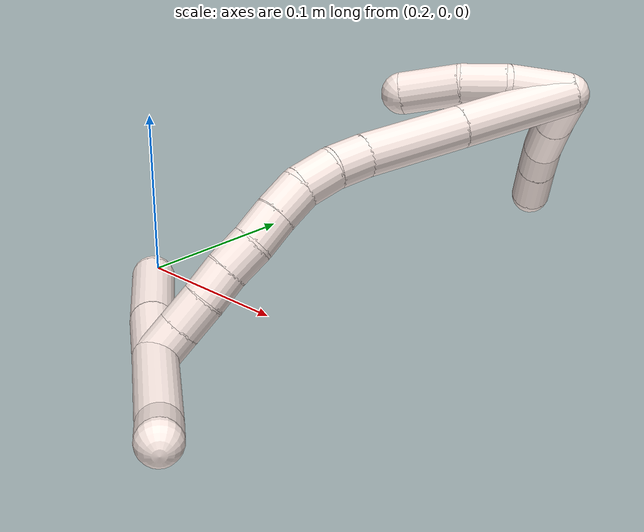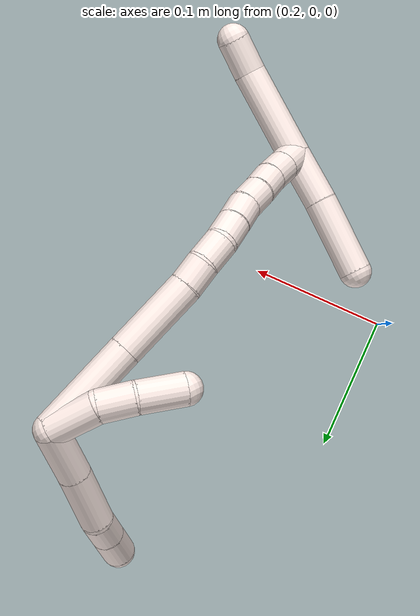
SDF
<sdf version="1.7">
 <world name="default">
  <model name="11">
   <static>0</static>
   <link name="11">
    <collision name="collision-cylinder-e_1_2_8">
     <pose>-0.013396 -0.006404 0.016748 0.365244 -0.641652 -0.122587</pose>
     <geometry><cylinder><radius>0.0125</radius><length>0.044764</length></cylinder></geometry>
     <surface>
      <friction><ode><mu>1.16</mu><mu2>1.16</mu2><slip1>0</slip1><slip2>0</slip2></ode></friction>
      <contact><ode><kp>1e+06</kp><kd>1</kd><max_vel>0</max_vel><min_depth>0.001</min_depth></ode></contact>
     </surface>
    </collision>
    <visual name="visual-cylinder-e_1_2_8">
     <pose>-0.013396 -0.006404 0.016748 0.365244 -0.641652 -0.122587</pose>
     <geometry><cylinder><radius>0.0125</radius><length>0.044764</length></cylinder></geometry>
     <material><ambient>1 0.933333 0.909804 1</ambient></material>
    </visual>
    <collision name="collision-cylinder-e_2_8_9">
     <pose>-0.041928 -0.019199 0.051952 0.333316 -0.65928 -0.114976</pose>
     <geometry><cylinder><radius>0.0125</radius><length>0.049421</length></cylinder></geometry>
     <surface>
      <friction><ode><mu>1.16</mu><mu2>1.16</mu2><slip1>0</slip1><slip2>0</slip2></ode></friction>
      <contact><ode><kp>1e+06</kp><kd>1</kd><max_vel>0</max_vel><min_depth>0.001</min_depth></ode></contact>
     </surface>
    </collision>
    <visual name="visual-cylinder-e_2_8_9">
     <pose>-0.041928 -0.019199 0.051952 0.333316 -0.65928 -0.114976</pose>
     <geometry><cylinder><radius>0.0125</radius><length>0.049421</length></cylinder></geometry>
     <material><ambient>1 0.933333 0.909804 1</ambient></material>
    </visual>
    <collision name="collision-cylinder-e_3_9_10">
     <pose>-0.066191 -0.030582 0.077192 0.634533 -0.825507 -0.285624</pose>
     <geometry><cylinder><radius>0.0125</radius><length>0.024835</length></cylinder></geometry>
     <surface>
      <friction><ode><mu>1.16</mu><mu2>1.16</mu2><slip1>0</slip1><slip2>0</slip2></ode></friction>
      <contact><ode><kp>1e+06</kp><kd>1</kd><max_vel>0</max_vel><min_depth>0.001</min_depth></ode></contact>
     </surface>
    </collision>
    <visual name="visual-cylinder-e_3_9_10">
     <pose>-0.066191 -0.030582 0.077192 0.634533 -0.825507 -0.285624</pose>
     <geometry><cylinder><radius>0.0125</radius><length>0.024835</length></cylinder></geometry>
     <material><ambient>1 0.933333 0.909804 1</ambient></material>
    </visual>
    <collision name="collision-cylinder-e_4_10_6">
     <pose>-0.086998 -0.041883 0.091953 0.668975 -0.854372 -0.313819</pose>
     <geometry><cylinder><radius>0.0125</radius><length>0.03098</length></cylinder></geometry>
     <surface>
      <friction><ode><mu>1.16</mu><mu2>1.16</mu2><slip1>0</slip1><slip2>0</slip2></ode></friction>
      <contact><ode><kp>1e+06</kp><kd>1</kd><max_vel>0</max_vel><min_depth>0.001</min_depth></ode></contact>
     </surface>
    </collision>
    <visual name="visual-cylinder-e_4_10_6">
     <pose>-0.086998 -0.041883 0.091953 0.668975 -0.854372 -0.313819</pose>
     <geometry><cylinder><radius>0.0125</radius><length>0.03098</length></cylinder></geometry>
     <material><ambient>1 0.933333 0.909804 1</ambient></material>
    </visual>
    <collision name="collision-cylinder-e_1_2_11">
     <pose>0.012348 -0.014065 0.000633 1.52579 0.719986 0.690799</pose>
     <geometry><cylinder><radius>0.0125</radius><length>0.037454</length></cylinder></geometry>
     <surface>
      <friction><ode><mu>1.16</mu><mu2>1.16</mu2><slip1>0</slip1><slip2>0</slip2></ode></friction>
      <contact><ode><kp>1e+06</kp><kd>1</kd><max_vel>0</max_vel><min_depth>0.001</min_depth></ode></contact>
     </surface>
    </collision>
    <visual name="visual-cylinder-e_1_2_11">
     <pose>0.012348 -0.014065 0.000633 1.52579 0.719986 0.690799</pose>
     <geometry><cylinder><radius>0.0125</radius><length>0.037454</length></cylinder></geometry>
     <material><ambient>1 0.933333 0.909804 1</ambient></material>
    </visual>
    <collision name="collision-cylinder-e_2_11_12">
     <pose>0.031012 -0.039716 0.004739 1.27963 0.481214 0.361242</pose>
     <geometry><cylinder><radius>0.0125</radius><length>0.027289</length></cylinder></geometry>
     <surface>
      <friction><ode><mu>1.16</mu><mu2>1.16</mu2><slip1>0</slip1><slip2>0</slip2></ode></friction>
      <contact><ode><kp>1e+06</kp><kd>1</kd><max_vel>0</max_vel><min_depth>0.001</min_depth></ode></contact>
     </surface>
    </collision>
    <visual name="visual-cylinder-e_2_11_12">
     <pose>0.031012 -0.039716 0.004739 1.27963 0.481214 0.361242</pose>
     <geometry><cylinder><radius>0.0125</radius><length>0.027289</length></cylinder></geometry>
     <material><ambient>1 0.933333 0.909804 1</ambient></material>
    </visual>
    <collision name="collision-cylinder-e_3_12_5">
     <pose>0.042518 -0.067331 0.013395 1.258 0.298894 0.218233</pose>
     <geometry><cylinder><radius>0.0125</radius><length>0.035257</length></cylinder></geometry>
     <surface>
      <friction><ode><mu>1.16</mu><mu2>1.16</mu2><slip1>0</slip1><slip2>0</slip2></ode></friction>
      <contact><ode><kp>1e+06</kp><kd>1</kd><max_vel>0</max_vel><min_depth>0.001</min_depth></ode></contact>
     </surface>
    </collision>
    <visual name="visual-cylinder-e_3_12_5">
     <pose>0.042518 -0.067331 0.013395 1.258 0.298894 0.218233</pose>
     <geometry><cylinder><radius>0.0125</radius><length>0.035257</length></cylinder></geometry>
     <material><ambient>1 0.933333 0.909804 1</ambient></material>
    </visual>
    <collision name="collision-cylinder-e_1_2_13">
     <pose>0.014834 -0.032221 -0.012549 1.94219 0.405246 0.583808</pose>
     <geometry><cylinder><radius>0.0125</radius><length>0.075253</length></cylinder></geometry>
     <surface>
      <friction><ode><mu>1.16</mu><mu2>1.16</mu2><slip1>0</slip1><slip2>0</slip2></ode></friction>
      <contact><ode><kp>1e+06</kp><kd>1</kd><max_vel>0</max_vel><min_depth>0.001</min_depth></ode></contact>
     </surface>
    </collision>
    <visual name="visual-cylinder-e_1_2_13">
     <pose>0.014834 -0.032221 -0.012549 1.94219 0.405246 0.583808</pose>
     <geometry><cylinder><radius>0.0125</radius><length>0.075253</length></cylinder></geometry>
     <material><ambient>1 0.933333 0.909804 1</ambient></material>
    </visual>
    <collision name="collision-cylinder-e_2_13_14">
     <pose>0.041936 -0.091014 -0.035301 1.93741 0.406962 0.583376</pose>
     <geometry><cylinder><radius>0.0125</radius><length>0.061988</length></cylinder></geometry>
     <surface>
      <friction><ode><mu>1.16</mu><mu2>1.16</mu2><slip1>0</slip1><slip2>0</slip2></ode></friction>
      <contact><ode><kp>1e+06</kp><kd>1</kd><max_vel>0</max_vel><min_depth>0.001</min_depth></ode></contact>
     </surface>
    </collision>
    <visual name="visual-cylinder-e_2_13_14">
     <pose>0.041936 -0.091014 -0.035301 1.93741 0.406962 0.583376</pose>
     <geometry><cylinder><radius>0.0125</radius><length>0.061988</length></cylinder></geometry>
     <material><ambient>1 0.933333 0.909804 1</ambient></material>
    </visual>
    <collision name="collision-cylinder-e_3_14_15">
     <pose>0.057793 -0.126175 -0.049928 2.04642 0.355634 0.573204</pose>
     <geometry><cylinder><radius>0.0125</radius><length>0.020615</length></cylinder></geometry>
     <surface>
      <friction><ode><mu>1.16</mu><mu2>1.16</mu2><slip1>0</slip1><slip2>0</slip2></ode></friction>
      <contact><ode><kp>1e+06</kp><kd>1</kd><max_vel>0</max_vel><min_depth>0.001</min_depth></ode></contact>
     </surface>
    </collision>
    <visual name="visual-cylinder-e_3_14_15">
     <pose>0.057793 -0.126175 -0.049928 2.04642 0.355634 0.573204</pose>
     <geometry><cylinder><radius>0.0125</radius><length>0.020615</length></cylinder></geometry>
     <material><ambient>1 0.933333 0.909804 1</ambient></material>
    </visual>
    <collision name="collision-cylinder-e_4_15_16">
     <pose>0.063256 -0.144587 -0.058552 1.97485 0.173653 0.26226</pose>
     <geometry><cylinder><radius>0.0125</radius><length>0.021689</length></cylinder></geometry>
     <surface>
      <friction><ode><mu>1.16</mu><mu2>1.16</mu2><slip1>0</slip1><slip2>0</slip2></ode></friction>
      <contact><ode><kp>1e+06</kp><kd>1</kd><max_vel>0</max_vel><min_depth>0.001</min_depth></ode></contact>
     </surface>
    </collision>
    <visual name="visual-cylinder-e_4_15_16">
     <pose>0.063256 -0.144587 -0.058552 1.97485 0.173653 0.26226</pose>
     <geometry><cylinder><radius>0.0125</radius><length>0.021689</length></cylinder></geometry>
     <material><ambient>1 0.933333 0.909804 1</ambient></material>
    </visual>
    <collision name="collision-cylinder-e_5_16_17">
     <pose>0.064033 -0.163527 -0.067212 2.02575 -0.107642 -0.172227</pose>
     <geometry><cylinder><radius>0.0125</radius><length>0.020421</length></cylinder></geometry>
     <surface>
      <friction><ode><mu>1.16</mu><mu2>1.16</mu2><slip1>0</slip1><slip2>0</slip2></ode></friction>
      <contact><ode><kp>1e+06</kp><kd>1</kd><max_vel>0</max_vel><min_depth>0.001</min_depth></ode></contact>
     </surface>
    </collision>
    <visual name="visual-cylinder-e_5_16_17">
     <pose>0.064033 -0.163527 -0.067212 2.02575 -0.107642 -0.172227</pose>
     <geometry><cylinder><radius>0.0125</radius><length>0.020421</length></cylinder></geometry>
     <material><ambient>1 0.933333 0.909804 1</ambient></material>
    </visual>
    <collision name="collision-cylinder-e_6_17_18">
     <pose>0.061197 -0.181458 -0.076076 2.03423 -0.174669 -0.2814</pose>
     <geometry><cylinder><radius>0.0125</radius><length>0.020006</length></cylinder></geometry>
     <surface>
      <friction><ode><mu>1.16</mu><mu2>1.16</mu2><slip1>0</slip1><slip2>0</slip2></ode></friction>
      <contact><ode><kp>1e+06</kp><kd>1</kd><max_vel>0</max_vel><min_depth>0.001</min_depth></ode></contact>
     </surface>
    </collision>
    <visual name="visual-cylinder-e_6_17_18">
     <pose>0.061197 -0.181458 -0.076076 2.03423 -0.174669 -0.2814</pose>
     <geometry><cylinder><radius>0.0125</radius><length>0.020006</length></cylinder></geometry>
     <material><ambient>1 0.933333 0.909804 1</ambient></material>
    </visual>
    <collision name="collision-cylinder-e_7_18_19">
     <pose>0.05797 -0.199709 -0.08344 1.8747 -0.149396 -0.203103</pose>
     <geometry><cylinder><radius>0.0125</radius><length>0.020007</length></cylinder></geometry>
     <surface>
      <friction><ode><mu>1.16</mu><mu2>1.16</mu2><slip1>0</slip1><slip2>0</slip2></ode></friction>
      <contact><ode><kp>1e+06</kp><kd>1</kd><max_vel>0</max_vel><min_depth>0.001</min_depth></ode></contact>
     </surface>
    </collision>
    <visual name="visual-cylinder-e_7_18_19">
     <pose>0.05797 -0.199709 -0.08344 1.8747 -0.149396 -0.203103</pose>
     <geometry><cylinder><radius>0.0125</radius><length>0.020007</length></cylinder></geometry>
     <material><ambient>1 0.933333 0.909804 1</ambient></material>
    </visual>
    <collision name="collision-cylinder-e_8_19_20">
     <pose>0.054082 -0.218267 -0.089752 1.92295 -0.242116 -0.345154</pose>
     <geometry><cylinder><radius>0.0125</radius><length>0.020015</length></cylinder></geometry>
     <surface>
      <friction><ode><mu>1.16</mu><mu2>1.16</mu2><slip1>0</slip1><slip2>0</slip2></ode></friction>
      <contact><ode><kp>1e+06</kp><kd>1</kd><max_vel>0</max_vel><min_depth>0.001</min_depth></ode></contact>
     </surface>
    </collision>
    <visual name="visual-cylinder-e_8_19_20">
     <pose>0.054082 -0.218267 -0.089752 1.92295 -0.242116 -0.345154</pose>
     <geometry><cylinder><radius>0.0125</radius><length>0.020015</length></cylinder></geometry>
     <material><ambient>1 0.933333 0.909804 1</ambient></material>
    </visual>
    <collision name="collision-cylinder-e_9_20_21">
     <pose>0.049268 -0.236766 -0.0956 1.83105 -0.243814 -0.316156</pose>
     <geometry><cylinder><radius>0.0125</radius><length>0.020005</length></cylinder></geometry>
     <surface>
      <friction><ode><mu>1.16</mu><mu2>1.16</mu2><slip1>0</slip1><slip2>0</slip2></ode></friction>
      <contact><ode><kp>1e+06</kp><kd>1</kd><max_vel>0</max_vel><min_depth>0.001</min_depth></ode></contact>
     </surface>
    </collision>
    <visual name="visual-cylinder-e_9_20_21">
     <pose>0.049268 -0.236766 -0.0956 1.83105 -0.243814 -0.316156</pose>
     <geometry><cylinder><radius>0.0125</radius><length>0.020005</length></cylinder></geometry>
     <material><ambient>1 0.933333 0.909804 1</ambient></material>
    </visual>
    <collision name="collision-cylinder-e_10_21_1">
     <pose>0.044444 -0.255523 -0.100602 1.83173 -0.243353 -0.315782</pose>
     <geometry><cylinder><radius>0.0125</radius><length>0.02</length></cylinder></geometry>
     <surface>
      <friction><ode><mu>1.16</mu><mu2>1.16</mu2><slip1>0</slip1><slip2>0</slip2></ode></friction>
      <contact><ode><kp>1e+06</kp><kd>1</kd><max_vel>0</max_vel><min_depth>0.001</min_depth></ode></contact>
     </surface>
    </collision>
    <visual name="visual-cylinder-e_10_21_1">
     <pose>0.044444 -0.255523 -0.100602 1.83173 -0.243353 -0.315782</pose>
     <geometry><cylinder><radius>0.0125</radius><length>0.02</length></cylinder></geometry>
     <material><ambient>1 0.933333 0.909804 1</ambient></material>
    </visual>
    <collision name="collision-cylinder-e_1_1_22">
     <pose>0.04314 -0.263839 -0.1389 -3.11197 0.030881 -1.6125</pose>
     <geometry><cylinder><radius>0.0125</radius><length>0.071655</length></cylinder></geometry>
     <surface>
      <friction><ode><mu>1.16</mu><mu2>1.16</mu2><slip1>0</slip1><slip2>0</slip2></ode></friction>
      <contact><ode><kp>1e+06</kp><kd>1</kd><max_vel>0</max_vel><min_depth>0.001</min_depth></ode></contact>
     </surface>
    </collision>
    <visual name="visual-cylinder-e_1_1_22">
     <pose>0.04314 -0.263839 -0.1389 -3.11197 0.030881 -1.6125</pose>
     <geometry><cylinder><radius>0.0125</radius><length>0.071655</length></cylinder></geometry>
     <material><ambient>1 0.933333 0.909804 1</ambient></material>
    </visual>
    <collision name="collision-cylinder-e_2_22_4">
     <pose>0.047933 -0.260708 -0.188222 -2.98972 0.263184 -2.09816</pose>
     <geometry><cylinder><radius>0.0125</radius><length>0.028345</length></cylinder></geometry>
     <surface>
      <friction><ode><mu>1.16</mu><mu2>1.16</mu2><slip1>0</slip1><slip2>0</slip2></ode></friction>
      <contact><ode><kp>1e+06</kp><kd>1</kd><max_vel>0</max_vel><min_depth>0.001</min_depth></ode></contact>
     </surface>
    </collision>
    <visual name="visual-cylinder-e_2_22_4">
     <pose>0.047933 -0.260708 -0.188222 -2.98972 0.263184 -2.09816</pose>
     <geometry><cylinder><radius>0.0125</radius><length>0.028345</length></cylinder></geometry>
     <material><ambient>1 0.933333 0.909804 1</ambient></material>
    </visual>
    <collision name="collision-cylinder-e_1_1_23">
     <pose>0.042103 -0.265365 -0.082773 0.022906 0.003423 3.9e-05</pose>
     <geometry><cylinder><radius>0.0125</radius><length>0.040677</length></cylinder></geometry>
     <surface>
      <friction><ode><mu>1.16</mu><mu2>1.16</mu2><slip1>0</slip1><slip2>0</slip2></ode></friction>
      <contact><ode><kp>1e+06</kp><kd>1</kd><max_vel>0</max_vel><min_depth>0.001</min_depth></ode></contact>
     </surface>
    </collision>
    <visual name="visual-cylinder-e_1_1_23">
     <pose>0.042103 -0.265365 -0.082773 0.022906 0.003423 3.9e-05</pose>
     <geometry><cylinder><radius>0.0125</radius><length>0.040677</length></cylinder></geometry>
     <material><ambient>1 0.933333 0.909804 1</ambient></material>
    </visual>
    <collision name="collision-cylinder-e_2_23_3">
     <pose>0.04063 -0.265793 -0.032818 -0.001292 -0.052033 3.4e-05</pose>
     <geometry><cylinder><radius>0.0125</radius><length>0.059323</length></cylinder></geometry>
     <surface>
      <friction><ode><mu>1.16</mu><mu2>1.16</mu2><slip1>0</slip1><slip2>0</slip2></ode></friction>
      <contact><ode><kp>1e+06</kp><kd>1</kd><max_vel>0</max_vel><min_depth>0.001</min_depth></ode></contact>
     </surface>
    </collision>
    <visual name="visual-cylinder-e_2_23_3">
     <pose>0.04063 -0.265793 -0.032818 -0.001292 -0.052033 3.4e-05</pose>
     <geometry><cylinder><radius>0.0125</radius><length>0.059323</length></cylinder></geometry>
     <material><ambient>1 0.933333 0.909804 1</ambient></material>
    </visual>
    <collision name="collision-sphere-3">
     <pose>0.039088 -0.265755 -0.003197 0 -0 0</pose>
     <geometry><sphere><radius>0.0125</radius></sphere></geometry>
     <surface>
      <friction><ode><mu>1.16</mu><mu2>1.16</mu2><slip1>0</slip1><slip2>0</slip2></ode></friction>
      <contact><ode><kp>1e+06</kp><kd>1</kd><max_vel>0</max_vel><min_depth>0.001</min_depth></ode></contact>
     </surface>
    </collision>
    <visual name="visual-sphere-3">
     <pose>0.039088 -0.265755 -0.003197 0 -0 0</pose>
     <geometry><sphere><radius>0.0125</radius></sphere></geometry>
     <material><ambient>1 0.933333 0.909804 1</ambient></material>
    </visual>
    <collision name="collision-sphere-23">
     <pose>0.042173 -0.265831 -0.06244 0 -0 0</pose>
     <geometry><sphere><radius>0.0125</radius></sphere></geometry>
     <surface>
      <friction><ode><mu>1.16</mu><mu2>1.16</mu2><slip1>0</slip1><slip2>0</slip2></ode></friction>
      <contact><ode><kp>1e+06</kp><kd>1</kd><max_vel>0</max_vel><min_depth>0.001</min_depth></ode></contact>
     </surface>
    </collision>
    <visual name="visual-sphere-23">
     <pose>0.042173 -0.265831 -0.06244 0 -0 0</pose>
     <geometry><sphere><radius>0.0125</radius></sphere></geometry>
     <material><ambient>1 0.933333 0.909804 1</ambient></material>
    </visual>
    <collision name="collision-sphere-4">
     <pose>0.05162 -0.258638 -0.201749 0 -0 0</pose>
     <geometry><sphere><radius>0.0125</radius></sphere></geometry>
     <surface>
      <friction><ode><mu>1.16</mu><mu2>1.16</mu2><slip1>0</slip1><slip2>0</slip2></ode></friction>
      <contact><ode><kp>1e+06</kp><kd>1</kd><max_vel>0</max_vel><min_depth>0.001</min_depth></ode></contact>
     </surface>
    </collision>
    <visual name="visual-sphere-4">
     <pose>0.05162 -0.258638 -0.201749 0 -0 0</pose>
     <geometry><sphere><radius>0.0125</radius></sphere></geometry>
     <material><ambient>1 0.933333 0.909804 1</ambient></material>
    </visual>
    <collision name="collision-sphere-22">
     <pose>0.044246 -0.262779 -0.174695 0 -0 0</pose>
     <geometry><sphere><radius>0.0125</radius></sphere></geometry>
     <surface>
      <friction><ode><mu>1.16</mu><mu2>1.16</mu2><slip1>0</slip1><slip2>0</slip2></ode></friction>
      <contact><ode><kp>1e+06</kp><kd>1</kd><max_vel>0</max_vel><min_depth>0.001</min_depth></ode></contact>
     </surface>
    </collision>
    <visual name="visual-sphere-22">
     <pose>0.044246 -0.262779 -0.174695 0 -0 0</pose>
     <geometry><sphere><radius>0.0125</radius></sphere></geometry>
     <material><ambient>1 0.933333 0.909804 1</ambient></material>
    </visual>
    <collision name="collision-sphere-1">
     <pose>0.042034 -0.2649 -0.103106 0 -0 0</pose>
     <geometry><sphere><radius>0.0125</radius></sphere></geometry>
     <surface>
      <friction><ode><mu>1.16</mu><mu2>1.16</mu2><slip1>0</slip1><slip2>0</slip2></ode></friction>
      <contact><ode><kp>1e+06</kp><kd>1</kd><max_vel>0</max_vel><min_depth>0.001</min_depth></ode></contact>
     </surface>
    </collision>
    <visual name="visual-sphere-1">
     <pose>0.042034 -0.2649 -0.103106 0 -0 0</pose>
     <geometry><sphere><radius>0.0125</radius></sphere></geometry>
     <material><ambient>1 0.933333 0.909804 1</ambient></material>
    </visual>
    <collision name="collision-sphere-21">
     <pose>0.046853 -0.246146 -0.098098 0 -0 0</pose>
     <geometry><sphere><radius>0.0125</radius></sphere></geometry>
     <surface>
      <friction><ode><mu>1.16</mu><mu2>1.16</mu2><slip1>0</slip1><slip2>0</slip2></ode></friction>
      <contact><ode><kp>1e+06</kp><kd>1</kd><max_vel>0</max_vel><min_depth>0.001</min_depth></ode></contact>
     </surface>
    </collision>
    <visual name="visual-sphere-21">
     <pose>0.046853 -0.246146 -0.098098 0 -0 0</pose>
     <geometry><sphere><radius>0.0125</radius></sphere></geometry>
     <material><ambient>1 0.933333 0.909804 1</ambient></material>
    </visual>
    <collision name="collision-sphere-11">
     <pose>0.024696 -0.02813 0.001267 0 -0 0</pose>
     <geometry><sphere><radius>0.0125</radius></sphere></geometry>
     <surface>
      <friction><ode><mu>1.16</mu><mu2>1.16</mu2><slip1>0</slip1><slip2>0</slip2></ode></friction>
      <contact><ode><kp>1e+06</kp><kd>1</kd><max_vel>0</max_vel><min_depth>0.001</min_depth></ode></contact>
     </surface>
    </collision>
    <visual name="visual-sphere-11">
     <pose>0.024696 -0.02813 0.001267 0 -0 0</pose>
     <geometry><sphere><radius>0.0125</radius></sphere></geometry>
     <material><ambient>1 0.933333 0.909804 1</ambient></material>
    </visual>
    <collision name="collision-sphere-6">
     <pose>-0.09868 -0.048191 0.099933 0 -0 0</pose>
     <geometry><sphere><radius>0.0125</radius></sphere></geometry>
     <surface>
      <friction><ode><mu>1.16</mu><mu2>1.16</mu2><slip1>0</slip1><slip2>0</slip2></ode></friction>
      <contact><ode><kp>1e+06</kp><kd>1</kd><max_vel>0</max_vel><min_depth>0.001</min_depth></ode></contact>
     </surface>
    </collision>
    <visual name="visual-sphere-6">
     <pose>-0.09868 -0.048191 0.099933 0 -0 0</pose>
     <geometry><sphere><radius>0.0125</radius></sphere></geometry>
     <material><ambient>1 0.933333 0.909804 1</ambient></material>
    </visual>
    <collision name="collision-sphere-10">
     <pose>-0.075316 -0.035574 0.083974 0 -0 0</pose>
     <geometry><sphere><radius>0.0125</radius></sphere></geometry>
     <surface>
      <friction><ode><mu>1.16</mu><mu2>1.16</mu2><slip1>0</slip1><slip2>0</slip2></ode></friction>
      <contact><ode><kp>1e+06</kp><kd>1</kd><max_vel>0</max_vel><min_depth>0.001</min_depth></ode></contact>
     </surface>
    </collision>
    <visual name="visual-sphere-10">
     <pose>-0.075316 -0.035574 0.083974 0 -0 0</pose>
     <geometry><sphere><radius>0.0125</radius></sphere></geometry>
     <material><ambient>1 0.933333 0.909804 1</ambient></material>
    </visual>
    <collision name="collision-sphere-9">
     <pose>-0.057065 -0.02559 0.07041 0 -0 0</pose>
     <geometry><sphere><radius>0.0125</radius></sphere></geometry>
     <surface>
      <friction><ode><mu>1.16</mu><mu2>1.16</mu2><slip1>0</slip1><slip2>0</slip2></ode></friction>
      <contact><ode><kp>1e+06</kp><kd>1</kd><max_vel>0</max_vel><min_depth>0.001</min_depth></ode></contact>
     </surface>
    </collision>
    <visual name="visual-sphere-9">
     <pose>-0.057065 -0.02559 0.07041 0 -0 0</pose>
     <geometry><sphere><radius>0.0125</radius></sphere></geometry>
     <material><ambient>1 0.933333 0.909804 1</ambient></material>
    </visual>
    <collision name="collision-sphere-2">
     <geometry><sphere><radius>0.0125</radius></sphere></geometry>
     <surface>
      <friction><ode><mu>1.16</mu><mu2>1.16</mu2><slip1>0</slip1><slip2>0</slip2></ode></friction>
      <contact><ode><kp>1e+06</kp><kd>1</kd><max_vel>0</max_vel><min_depth>0.001</min_depth></ode></contact>
     </surface>
    </collision>
    <visual name="visual-sphere-2">
     <geometry><sphere><radius>0.0125</radius></sphere></geometry>
     <material><ambient>1 0.933333 0.909804 1</ambient></material>
    </visual>
    <collision name="collision-sphere-19">
     <pose>0.056481 -0.209148 -0.0864 0 -0 0</pose>
     <geometry><sphere><radius>0.0125</radius></sphere></geometry>
     <surface>
      <friction><ode><mu>1.16</mu><mu2>1.16</mu2><slip1>0</slip1><slip2>0</slip2></ode></friction>
      <contact><ode><kp>1e+06</kp><kd>1</kd><max_vel>0</max_vel><min_depth>0.001</min_depth></ode></contact>
     </surface>
    </collision>
    <visual name="visual-sphere-19">
     <pose>0.056481 -0.209148 -0.0864 0 -0 0</pose>
     <geometry><sphere><radius>0.0125</radius></sphere></geometry>
     <material><ambient>1 0.933333 0.909804 1</ambient></material>
    </visual>
    <collision name="collision-sphere-8">
     <pose>-0.026792 -0.012809 0.033495 0 -0 0</pose>
     <geometry><sphere><radius>0.0125</radius></sphere></geometry>
     <surface>
      <friction><ode><mu>1.16</mu><mu2>1.16</mu2><slip1>0</slip1><slip2>0</slip2></ode></friction>
      <contact><ode><kp>1e+06</kp><kd>1</kd><max_vel>0</max_vel><min_depth>0.001</min_depth></ode></contact>
     </surface>
    </collision>
    <visual name="visual-sphere-8">
     <pose>-0.026792 -0.012809 0.033495 0 -0 0</pose>
     <geometry><sphere><radius>0.0125</radius></sphere></geometry>
     <material><ambient>1 0.933333 0.909804 1</ambient></material>
    </visual>
    <collision name="collision-sphere-12">
     <pose>0.037327 -0.051302 0.008211 0 -0 0</pose>
     <geometry><sphere><radius>0.0125</radius></sphere></geometry>
     <surface>
      <friction><ode><mu>1.16</mu><mu2>1.16</mu2><slip1>0</slip1><slip2>0</slip2></ode></friction>
      <contact><ode><kp>1e+06</kp><kd>1</kd><max_vel>0</max_vel><min_depth>0.001</min_depth></ode></contact>
     </surface>
    </collision>
    <visual name="visual-sphere-12">
     <pose>0.037327 -0.051302 0.008211 0 -0 0</pose>
     <geometry><sphere><radius>0.0125</radius></sphere></geometry>
     <material><ambient>1 0.933333 0.909804 1</ambient></material>
    </visual>
    <collision name="collision-sphere-5">
     <pose>0.047709 -0.083361 0.01858 0 -0 0</pose>
     <geometry><sphere><radius>0.0125</radius></sphere></geometry>
     <surface>
      <friction><ode><mu>1.16</mu><mu2>1.16</mu2><slip1>0</slip1><slip2>0</slip2></ode></friction>
      <contact><ode><kp>1e+06</kp><kd>1</kd><max_vel>0</max_vel><min_depth>0.001</min_depth></ode></contact>
     </surface>
    </collision>
    <visual name="visual-sphere-5">
     <pose>0.047709 -0.083361 0.01858 0 -0 0</pose>
     <geometry><sphere><radius>0.0125</radius></sphere></geometry>
     <material><ambient>1 0.933333 0.909804 1</ambient></material>
    </visual>
    <collision name="collision-sphere-13">
     <pose>0.029668 -0.064443 -0.025098 0 -0 0</pose>
     <geometry><sphere><radius>0.0125</radius></sphere></geometry>
     <surface>
      <friction><ode><mu>1.16</mu><mu2>1.16</mu2><slip1>0</slip1><slip2>0</slip2></ode></friction>
      <contact><ode><kp>1e+06</kp><kd>1</kd><max_vel>0</max_vel><min_depth>0.001</min_depth></ode></contact>
     </surface>
    </collision>
    <visual name="visual-sphere-13">
     <pose>0.029668 -0.064443 -0.025098 0 -0 0</pose>
     <geometry><sphere><radius>0.0125</radius></sphere></geometry>
     <material><ambient>1 0.933333 0.909804 1</ambient></material>
    </visual>
    <collision name="collision-sphere-14">
     <pose>0.054204 -0.117585 -0.045504 0 -0 0</pose>
     <geometry><sphere><radius>0.0125</radius></sphere></geometry>
     <surface>
      <friction><ode><mu>1.16</mu><mu2>1.16</mu2><slip1>0</slip1><slip2>0</slip2></ode></friction>
      <contact><ode><kp>1e+06</kp><kd>1</kd><max_vel>0</max_vel><min_depth>0.001</min_depth></ode></contact>
     </surface>
    </collision>
    <visual name="visual-sphere-14">
     <pose>0.054204 -0.117585 -0.045504 0 -0 0</pose>
     <geometry><sphere><radius>0.0125</radius></sphere></geometry>
     <material><ambient>1 0.933333 0.909804 1</ambient></material>
    </visual>
    <collision name="collision-sphere-15">
     <pose>0.061382 -0.134766 -0.054353 0 -0 0</pose>
     <geometry><sphere><radius>0.0125</radius></sphere></geometry>
     <surface>
      <friction><ode><mu>1.16</mu><mu2>1.16</mu2><slip1>0</slip1><slip2>0</slip2></ode></friction>
      <contact><ode><kp>1e+06</kp><kd>1</kd><max_vel>0</max_vel><min_depth>0.001</min_depth></ode></contact>
     </surface>
    </collision>
    <visual name="visual-sphere-15">
     <pose>0.061382 -0.134766 -0.054353 0 -0 0</pose>
     <geometry><sphere><radius>0.0125</radius></sphere></geometry>
     <material><ambient>1 0.933333 0.909804 1</ambient></material>
    </visual>
    <collision name="collision-sphere-16">
     <pose>0.06513 -0.154408 -0.062751 0 -0 0</pose>
     <geometry><sphere><radius>0.0125</radius></sphere></geometry>
     <surface>
      <friction><ode><mu>1.16</mu><mu2>1.16</mu2><slip1>0</slip1><slip2>0</slip2></ode></friction>
      <contact><ode><kp>1e+06</kp><kd>1</kd><max_vel>0</max_vel><min_depth>0.001</min_depth></ode></contact>
     </surface>
    </collision>
    <visual name="visual-sphere-16">
     <pose>0.06513 -0.154408 -0.062751 0 -0 0</pose>
     <geometry><sphere><radius>0.0125</radius></sphere></geometry>
     <material><ambient>1 0.933333 0.909804 1</ambient></material>
    </visual>
    <collision name="collision-sphere-17">
     <pose>0.062936 -0.172646 -0.071673 0 -0 0</pose>
     <geometry><sphere><radius>0.0125</radius></sphere></geometry>
     <surface>
      <friction><ode><mu>1.16</mu><mu2>1.16</mu2><slip1>0</slip1><slip2>0</slip2></ode></friction>
      <contact><ode><kp>1e+06</kp><kd>1</kd><max_vel>0</max_vel><min_depth>0.001</min_depth></ode></contact>
     </surface>
    </collision>
    <visual name="visual-sphere-17">
     <pose>0.062936 -0.172646 -0.071673 0 -0 0</pose>
     <geometry><sphere><radius>0.0125</radius></sphere></geometry>
     <material><ambient>1 0.933333 0.909804 1</ambient></material>
    </visual>
    <collision name="collision-sphere-18">
     <pose>0.059459 -0.19027 -0.08048 0 -0 0</pose>
     <geometry><sphere><radius>0.0125</radius></sphere></geometry>
     <surface>
      <friction><ode><mu>1.16</mu><mu2>1.16</mu2><slip1>0</slip1><slip2>0</slip2></ode></friction>
      <contact><ode><kp>1e+06</kp><kd>1</kd><max_vel>0</max_vel><min_depth>0.001</min_depth></ode></contact>
     </surface>
    </collision>
    <visual name="visual-sphere-18">
     <pose>0.059459 -0.19027 -0.08048 0 -0 0</pose>
     <geometry><sphere><radius>0.0125</radius></sphere></geometry>
     <material><ambient>1 0.933333 0.909804 1</ambient></material>
    </visual>
    <collision name="collision-sphere-20">
     <pose>0.051682 -0.227386 -0.093103 0 -0 0</pose>
     <geometry><sphere><radius>0.0125</radius></sphere></geometry>
     <surface>
      <friction><ode><mu>1.16</mu><mu2>1.16</mu2><slip1>0</slip1><slip2>0</slip2></ode></friction>
      <contact><ode><kp>1e+06</kp><kd>1</kd><max_vel>0</max_vel><min_depth>0.001</min_depth></ode></contact>
     </surface>
    </collision>
    <visual name="visual-sphere-20">
     <pose>0.051682 -0.227386 -0.093103 0 -0 0</pose>
     <geometry><sphere><radius>0.0125</radius></sphere></geometry>
     <material><ambient>1 0.933333 0.909804 1</ambient></material>
    </visual>
    <inertial>
     <pose>0.023064 -0.132158 -0.036814 0 -0 0</pose>
     <mass>0.75</mass>
     <inertia><ixx>0.000108</ixx><ixy>0</ixy><ixz>0</ixz><iyy>1.7e-05</iyy><iyz>0</iyz><izz>6.9e-05</izz></inertia>
    </inertial>
   </link>
   <pose>0.387537 0.164414 0.116857 1.46921 -1.02816 -2.15018</pose>
  </model>
 </world>
</sdf>
